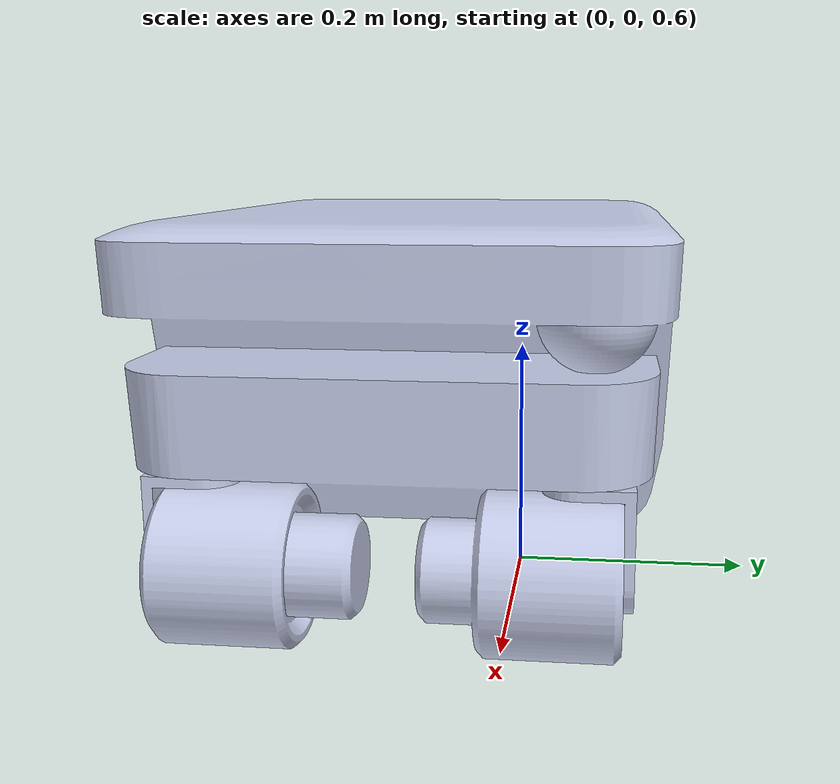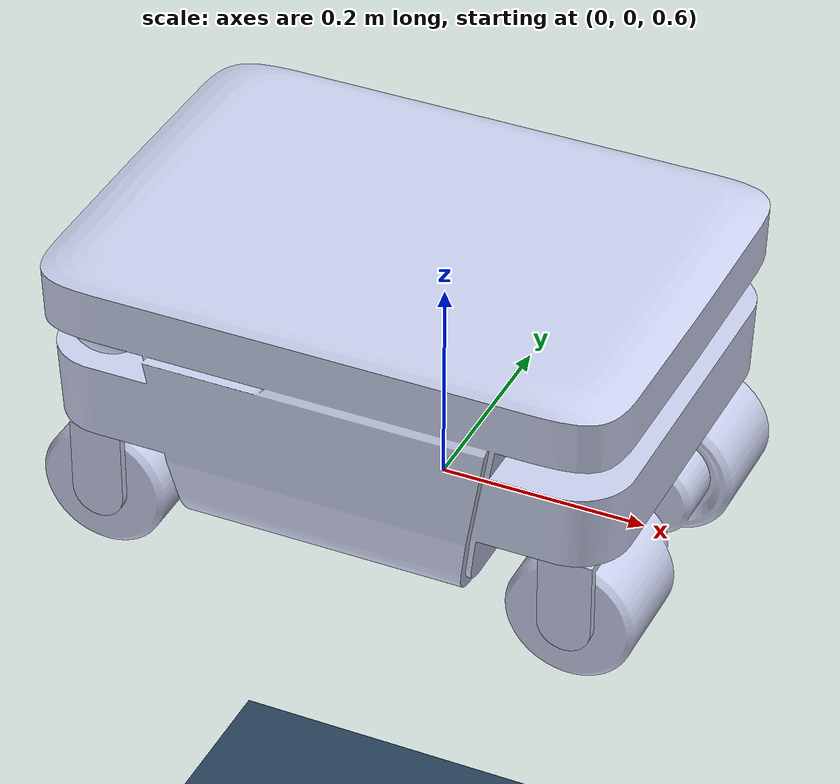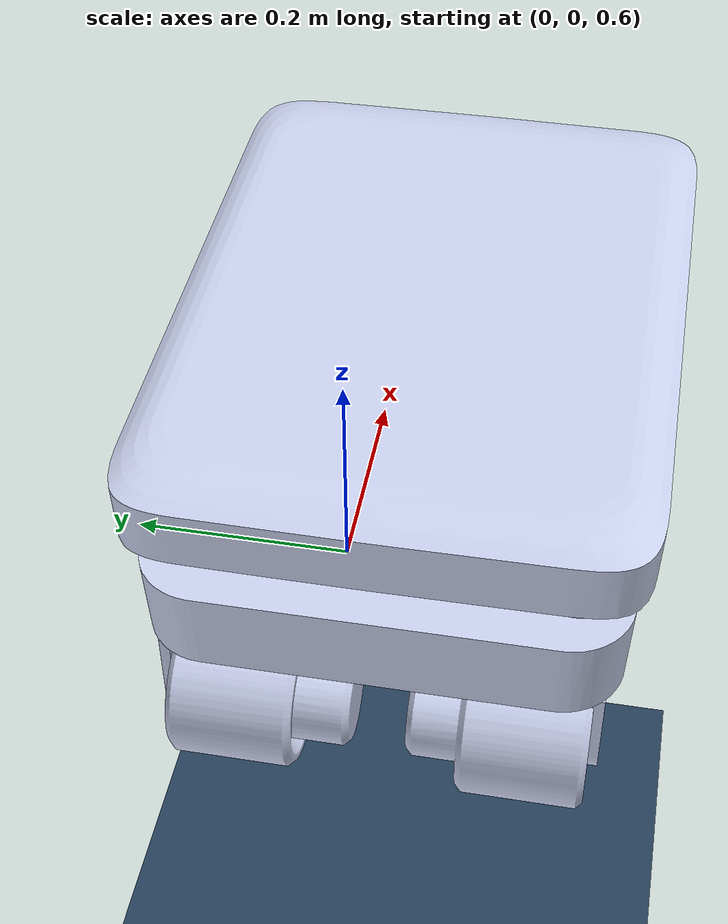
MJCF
<mujoco model="compal_amr scene">
  <include file="compal_amr.xml"/>

  <statistic center="0 0 0.1" extent="0.8"/>

  <visual>
    <headlight diffuse="0.6 0.6 0.6" ambient="0.3 0.3 0.3" specular="0 0 0"/>
    <rgba haze="0.15 0.25 0.35 1"/>
    <global azimuth="-130" elevation="-20"/>
  </visual>

  <asset>
    <texture type="skybox" builtin="gradient" rgb1="0.3 0.5 0.7" rgb2="0 0 0" width="512" height="3072"/>
    <texture type="2d" name="groundplane" builtin="checker" mark="edge" rgb1="0.2 0.3 0.4" rgb2="0.1 0.2 0.3"
      markrgb="0.8 0.8 0.8" width="300" height="300"/>
    <material name="groundplane" texture="groundplane" texuniform="true" texrepeat="5 5" reflectance="0.2"/>
  </asset>

  <worldbody>
    <light pos="0 0 1.5" dir="0 0 -1" directional="true"/>
    <geom name="floor" size="0 0 0.05" type="plane" material="groundplane"/>

  </worldbody>
</mujoco>

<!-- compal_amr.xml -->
<mujoco model="compal_amr">
  <compiler angle="radian" meshdir="meshes"/>

  <default>
      <default class="compal_amr">
          <geom friction="0.4" margin="0.001" condim="1"/>
          <joint damping="0.1" armature="0.01" frictionloss="0.2"/>
          <motor ctrlrange="-23.7 23.7"/>
          <default class="visual">
              <geom type="mesh" contype="0" conaffinity="0" group="2"/>
          </default>
          <default class="rotate">
              <joint axis="0 0 1"/>
              <motor ctrlrange="-23.7 23.7"/>
          </default>
          <default class="collision">
              <geom group="3" type="mesh" rgba="1 0 0 0.3" />
              <default class="wheel">
              <geom size="0.022" priority="1" condim="6"
                  friction="0.8 0.02 0.01"/>
              </default>
          </default>
      </default>
  </default>

  <asset>
    <mesh name="base_link" file="base_link.STL"/>
    <mesh name="base_link_collision" file="base_link_collision.STL"/>
    <mesh name="F_lidar" file="F_lidar.STL"/>
    <mesh name="R_lidar" file="R_lidar.STL"/>
    <mesh name="FL_Z" file="FL_Z.STL"/>
    <mesh name="FL_Y" file="FL_Y.STL"/>
    <mesh name="FR_Z" file="FR_Z.STL"/>
    <mesh name="FR_Y" file="FR_Y.STL"/>
    <mesh name="RL_Z" file="RL_Z.STL"/>
    <mesh name="RL_Y" file="RL_Y.STL"/>
    <mesh name="RR_Z" file="RR_Z.STL"/>
    <mesh name="RR_Y" file="RR_Y.STL"/>
  </asset>

  <worldbody>
  <body name="base_link" pos="0 -0.0762001 0.8" childclass="compal_amr">
        <inertial pos="2.59569390039498E-05 3.92560880102569E-07 0.0127582437299754" quat="1 0 0 0" mass="39.4194529711232" diaginertia="0.791445660994601 0.538814147760533 1.21586119090472" />
        <freejoint />
        <site name="imu" pos="0 0 0" />
        <geom type="mesh" contype="0" conaffinity="0" group="1" density="0" rgba="0.792157 0.819608 0.933333 1" mesh="base_link"/>
        <geom type="mesh" rgba="0.792157 0.819608 0.933333 1" mesh="base_link_collision" class="collision"/>
        <geom pos="0.217002 0.142905 0.059298" quat="1 0 0 0" type="mesh" contype="0" conaffinity="0" group="1" density="0" rgba="0.792157 0.819608 0.933333 1" mesh="F_lidar"/>
        <geom pos="-0.217002 -0.142905 0.059298" quat="1 0 0 0" type="mesh" contype="0" conaffinity="0" group="1" density="0" rgba="0.792157 0.819608 0.933333 1" mesh="R_lidar"/>
        <body name="FL_Z" pos="0.225 0.14 -0.050702">
          <inertial pos="4.48461e-07 0.0157407 -0.0317579" quat="0.690825 0.151014 -0.151008 0.690762" mass="0.062792" diaginertia="7.31368e-05 7.19677e-05 2.19947e-05"/>
          <joint name="FL_Z_joint" pos="0 0 0" axis="0 0 1"/>
          <geom type="mesh" contype="0" conaffinity="0" group="1" density="0" rgba="0.792157 0.819608 0.933333 1" mesh="FL_Z"/>
          <body name="FL_Y" pos="0 0 -0.075">
            <inertial pos="3.20811e-08 -0.0348592 1.70992e-08" quat="0.497895 0.502093 0.502094 0.4979" mass="1.28547" diaginertia="0.00209674 0.0018915 0.00189138"/>
            <joint name="FLY_joint" pos="0 0 0" axis="0 1 0"/>
            <geom type="mesh" contype="0" conaffinity="0" group="1" density="0" rgba="0.792157 0.819608 0.933333 1" mesh="FL_Y"/>
            <geom size="0.06 0.05" pos="0 -0.025 0" quat="0.707105 0.707108 0 0" type="cylinder" rgba="0.792157 0.819608 0.933333 1" class="collision"/>
          </body>
        </body>
        <body name="FR_Z" pos="0.225 -0.14 -0.050702">
          <inertial pos="-6.9696e-07 -0.0157423 -0.031752" quat="0.690732 -0.15099 0.15102 0.690857" mass="0.0627868" diaginertia="7.31409e-05 7.19699e-05 2.1997e-05"/>
          <joint name="FR_Z_joint" pos="0 0 0" axis="0 0 1"/>
          <geom type="mesh" contype="0" conaffinity="0" group="1" density="0" rgba="0.792157 0.819608 0.933333 1" mesh="FR_Z"/>
          <body name="FR_Y" pos="0 0 -0.075">
            <inertial pos="-2.87917e-08 0.0348592 3.48751e-08" quat="0.466063 0.531772 0.531776 0.466068" mass="1.28547" diaginertia="0.00209677 0.0018915 0.00189141"/>
            <joint name="FR_Y_joint" pos="0 0 0" axis="0 1 0"/>
            <geom type="mesh" contype="0" conaffinity="0" group="1" density="0" rgba="0.792157 0.819608 0.933333 1" mesh="FR_Y"/>
            <geom size="0.06 0.05" pos="0 0.025 0" quat="0.707105 -0.707108 0 0" type="cylinder" rgba="0.792157 0.819608 0.933333 1" class="collision"/>
          </body>
        </body>
        <body name="RL_Z" pos="-0.225 0.14 -0.050702">
          <inertial pos="2.41975e-07 0.0157407 -0.0317579" quat="0.690734 0.150996 -0.151025 0.690853" mass="0.062792" diaginertia="7.31368e-05 7.19677e-05 2.19947e-05"/>
          <joint name="RL_Z_joint" pos="0 0 0" axis="0 0 1"/>
          <geom type="mesh" contype="0" conaffinity="0" group="1" density="0" rgba="0.792157 0.819608 0.933333 1" mesh="RL_Z"/>
          <body name="RL_Y" pos="0 0 -0.075">
            <inertial pos="9.83658e-09 -0.0348592 1.73672e-08" quat="0.519875 0.479298 0.479299 0.51988" mass="1.28547" diaginertia="0.00209674 0.0018915 0.00189139"/>
            <joint name="RL_Y_joint" pos="0 0 0" axis="0 1 0"/>
            <geom type="mesh" contype="0" conaffinity="0" group="1" density="0" rgba="0.792157 0.819608 0.933333 1" mesh="RL_Y"/>
            <geom size="0.06 0.05" pos="0 -0.025 0" quat="0.707105 0.707108 0 0" type="cylinder" rgba="0.792157 0.819608 0.933333 1" class="collision"/>
          </body>
        </body>
        <body name="RR_Z" pos="-0.225 -0.14 -0.050702">
          <inertial pos="-9.03464e-07 -0.0157423 -0.031752" quat="0.690823 -0.151007 0.151003 0.690766" mass="0.0627868" diaginertia="7.31409e-05 7.19699e-05 2.1997e-05"/>
          <joint name="RR_Z_joint" pos="0 0 0" axis="0 0 1"/>
          <geom type="mesh" contype="0" conaffinity="0" group="1" density="0" rgba="0.792157 0.819608 0.933333 1" mesh="RR_Z"/>
          <body name="RR_Y" pos="0 0 -0.075">
            <inertial pos="-5.10362e-08 0.0348592 3.46071e-08" quat="0.480165 0.519073 0.519077 0.48017" mass="1.28547" diaginertia="0.00209676 0.0018915 0.00189141"/>
            <joint name="RR_Y_joint" pos="0 0 0" axis="0 1 0"/>
            <geom type="mesh" contype="0" conaffinity="0" group="1" density="0" rgba="0.792157 0.819608 0.933333 1" mesh="RR_Y"/>
            <geom size="0.06 0.05" pos="0 0.025 0" quat="0.707105 -0.707108 0 0" type="cylinder" rgba="0.792157 0.819608 0.933333 1" class="collision"/>
          </body>
        </body>
      </body>
  </worldbody>

  <actuator>
      <motor class="rotate" name="FL_motor" joint="FL_Z_joint" />
      <motor ctrlrange="-15 15" name="FL_wheel" joint="FLY_joint" />

      <motor class="rotate" name="FR_motor" joint="FR_Z_joint" />
      <motor ctrlrange="-15 15" name="FR_wheel" joint="FR_Y_joint" />

      <motor class="rotate" name="RL_motor" joint="RL_Z_joint" />
      <motor ctrlrange="-15 15" name="RL_wheel" joint="RL_Y_joint" />

      <motor class="rotate" name="RR_motor" joint="RR_Z_joint" />
      <motor ctrlrange="-15 15" name="RR_wheel" joint="RR_Y_joint" />

  </actuator>

  <sensor>

      <jointpos name="FL_Z_pos" joint="FL_Z_joint" />
      <jointpos name="FLY_pos" joint="FLY_joint" />

      <jointpos name="FR_Z_pos" joint="FR_Z_joint" />
      <jointpos name="FR_Y_pos" joint="FR_Y_joint" />

      <jointpos name="RL_Z_pos" joint="RL_Z_joint" />
      <jointpos name="RL_Y_pos" joint="RL_Y_joint" />

      <jointpos name="RR_Z_pos" joint="RR_Z_joint" />
      <jointpos name="RR_Y_pos" joint="RR_Y_joint" />

      <jointvel name="FL_Z_vel" joint="FL_Z_joint" />
      <jointvel name="FLY_vel" joint="FLY_joint" />

      <jointvel name="FR_Z_vel" joint="FR_Z_joint" />
      <jointvel name="FR_Y_vel" joint="FR_Y_joint" />

      <jointvel name="RL_Z_vel" joint="RL_Z_joint" />
      <jointvel name="RL_Y_vel" joint="RL_Y_joint" />

      <jointvel name="RR_Z_vel" joint="RR_Z_joint" />
      <jointvel name="RR_Y_vel" joint="RR_Y_joint" />

      <jointactuatorfrc name="FL_Z_torque" joint="FL_Z_joint" />
      <jointactuatorfrc name="FLY_torque" joint="FLY_joint" noise="0.01"/>

      <jointactuatorfrc name="FR_Z_torque" joint="FR_Z_joint" />
      <jointactuatorfrc name="FR_Y_torque" joint="FR_Y_joint" noise="0.01"/>

      <jointactuatorfrc name="RL_Z_torque" joint="RL_Z_joint" />
      <jointactuatorfrc name="RL_Y_torque" joint="RL_Y_joint" noise="0.01"/>

      <jointactuatorfrc name="RR_Z_torque" joint="RR_Z_joint" />
      <jointactuatorfrc name="RR_Y_torque" joint="RR_Y_joint" noise="0.01"/>

      <framequat name="imu_quat" objtype="site" objname="imu" noise="0.0"/>
      <gyro name="imu_gyro" site="imu" noise="0.0"/>
      <accelerometer name="imu_acc" site="imu" />

      <framepos name="frame_pos" objtype="site" objname="imu" />
      <framelinvel name="frame_lin_vel" objtype="site" objname="imu" />
      <frameangvel name="frame_ang_vel" objtype="site" objname="imu" />
  </sensor>

</mujoco>
